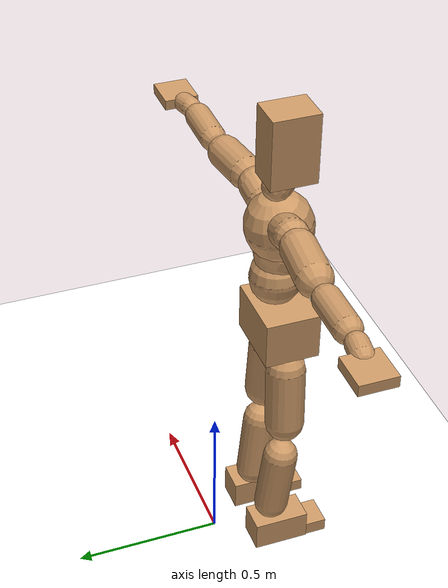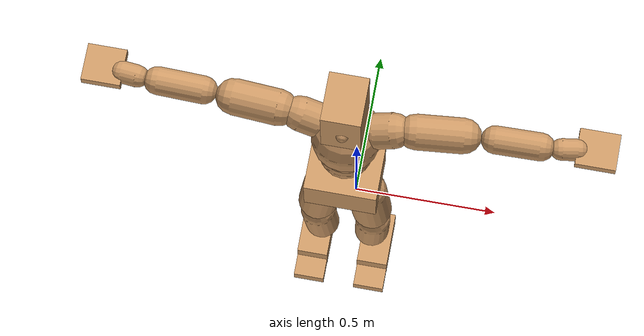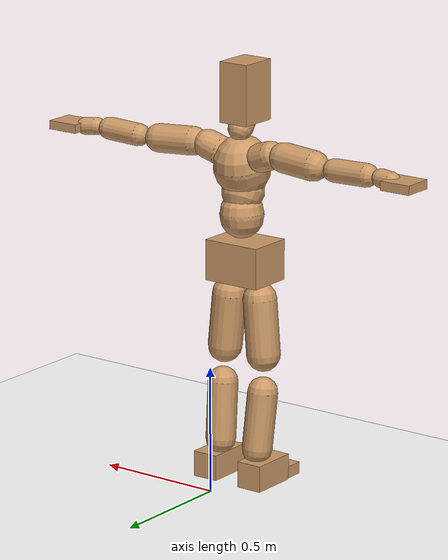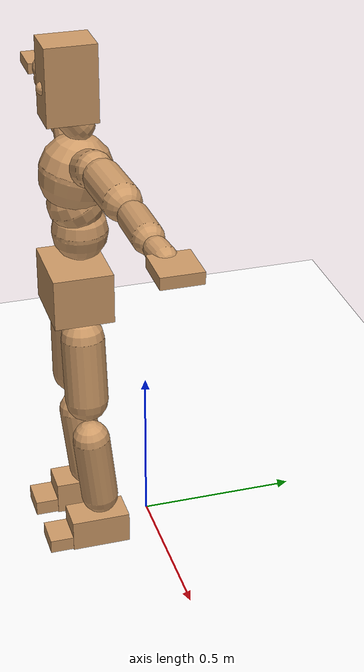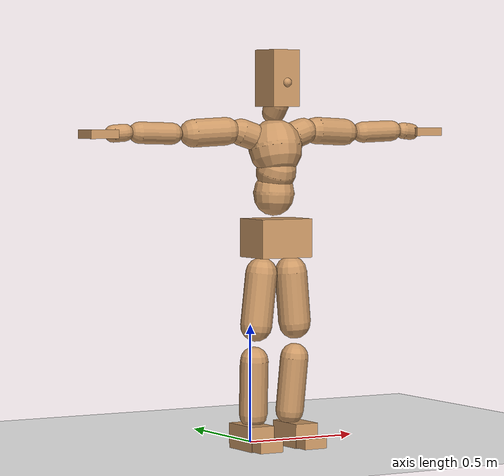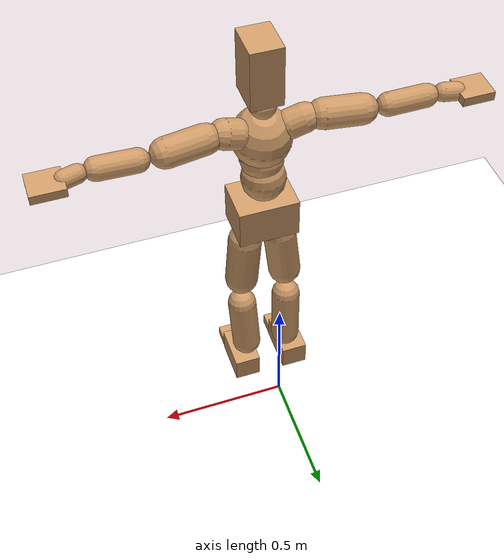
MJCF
<mujoco model="humanoid">
  <option integrator="implicitfast" />

  <visual>
    <global offwidth="1280" offheight="960" />
    <headlight active="1" ambient="0.34 0.34 0.34" diffuse="0.5 0.5 0.5" />
  </visual>

  <default>
    <joint damping="2" stiffness="2" armature="0.01" limited="true" solimplimit="0 .99 .01" />
    <geom condim="1" friction="0.7 0.005 0.0001" solimp=".99 .99 .003" solref="0.015 1" margin="0.001" rgba="0.8 0.6 .4 1" />
    <default class="smplcontact">
      <geom condim="3" friction="1. 0.005 0.0001" solref="0.015 1" solimp="0.98 0.98 0.001" priority="1" />
    </default>
    <default class="stiff_medium">
      <joint stiffness="10" />
    </default>
    <default class="stiff_medium_higher">
      <joint stiffness="50" />
    </default>
    <default class="stiff_high">
      <joint stiffness="100" />
    </default>
  </default>

  <asset>
    <texture type="skybox" builtin="gradient" rgb1="0.99 0.99 0.99" rgb2="0.608 0.828 0.892" width="100" />
    <texture builtin="flat" height="1278" mark="cross" markrgb="1 1 1" name="texgeom" random="0.01" rgb1="0.8 0.6 0.4" rgb2="0.8 0.6 0.4" type="cube" width="127" />
    <texture name="texplane" type="2d" builtin="checker" markrgb="1 1 1" rgb1="0.756 0.772 0.76" rgb2="0.6 0.6 0.6" width="100" height="100" />
    <material name="MatPlane" reflectance="0.5" texture="texplane" texrepeat="1 1" texuniform="true" />
    <material name="geom" texture="texgeom" texuniform="true" />
  </asset>

  <worldbody>
    <light name="tracking_light" pos="0 0 7" dir="0 0 -1" directional="true" cutoff="100" exponent="1" diffuse="1 1 1" specular="0.1 0.1 0.1" mode="trackcom" />
    <camera name="back" pos="0 3 2.4" xyaxes="-1 0 0 0 -1 2" mode="trackcom" />
    <camera name="side" pos="-3 0 2.4" xyaxes="0 -1 0 1 0 2" mode="trackcom" />
    <camera name="front_side" pos="-2.8 -2.8 0.8" xyaxes="0.5 -0.5 0 0.1 0.1 1" mode="trackcom" />
    <geom condim="3" name="floor" pos="0 0 0" rgba="1 1 1 1" size="100 100 .2" type="plane" material="MatPlane" />
    <body name="Pelvis" pos="-0.0018 -0.2233 0.891139" euler="90 0 0">
      <site name="Pelvis" size="0.01" />
      <freejoint name="Pelvis" />
      <geom type="box" pos="-0.0000 -0.0121 -0.0055" size="0.118926 0.0803225 0.0923375" quat="1.0000 0.0000 0.0000 0.0000" density="3165.830099" name="Pelvis" />
      <body name="L_Hip" pos="0.0655872 -0.0862542 -0.00641716">
        <joint name="L_Hip_x" type="hinge" pos="0 0 0" axis="1 0 0" stiffness="11.224100113636364" range="-160.0 22.92" class="stiff_medium" damping="16.52584637132894" armature="0.010814174480657322"/>
        <joint name="L_Hip_y" type="hinge" pos="0 0 0" axis="0 1 0" stiffness="11.25454909090909" range="-70.0 70.0" class="stiff_medium" damping="12.044141602982009" armature="0.012889130055850564"/>
        <joint name="L_Hip_z" type="hinge" pos="0 0 0" axis="0 0 1" stiffness="11.248242159090909" range="-28.65 90.0" class="stiff_medium" damping="11.027472553614855" armature="0.010811036000184862"/>
        <geom type="capsule" density="2040.816327" fromto="0.00651153 -0.0707775 -0.00084933 0.0258574 -0.283299 -0.00339732" size="0.0672687" name="L_Hip" />
        <body name="L_Knee" pos="0.0323689 -0.354076 -0.00424665">
          <joint name="L_Knee_x" type="hinge" pos="0 0 0" axis="1 0 0" range="-5.16 171.89" damping="9.027042336068336" armature="0.011136714867813416" stiffness="2.2865667272727275"/>
          <joint name="L_Knee_y" type="hinge" pos="0 0 0" axis="0 1 0" range="-4.58 6.88" damping="9.79659838648217" armature="0.01326654557773221" stiffness="2.260699181818182"/>
          <joint name="L_Knee_z" type="hinge" pos="0 0 0" axis="0 0 1" range="-6.88 4.58" damping="9.034437361930168" armature="0.011120937888179108" stiffness="2.293563818181818"/>
          <geom type="capsule" density="1234.567901" fromto="-0.00254799 -0.0751185 -0.00821019 -0.0102863 -0.300474 -0.0330295" size="0.0591746" name="L_Knee" />
          <body name="L_Ankle" pos="-0.0128343 -0.375593 -0.0412397">
            <joint name="L_Ankle_x" type="hinge" pos="0 0 0" axis="1 0 0" range="-45.84 45.84" class="stiff_medium" damping="7.609324313239408" armature="0.013023957638343932" stiffness="12.349424318181818"/>
            <joint name="L_Ankle_y" type="hinge" pos="0 0 0" axis="0 1 0" range="-74.48 22.92" class="stiff_medium" damping="3.8189387550023723" armature="0.013121882506594565" stiffness="12.349424886363636"/>
            <joint name="L_Ankle_z" type="hinge" pos="0 0 0" axis="0 0 1" range="-4.58 4.58" class="stiff_medium" damping="7.822240287837741" armature="0.013762991825523981" stiffness="12.349431136363638"/>
            <geom type="box" pos="0.0219882 -0.0225544 0.0228375" size="0.0528305 0.0507523 0.092973" quat="1.0000 0.0000 0.0000 0.0000" density="449.071558" name="L_Ankle" class="smplcontact" />
            <body name="L_Toe" pos="0.0249137 -0.0526585 0.112583">
              <joint name="L_Toe_x" type="hinge" pos="0 0 0" axis="1 0 0" range="-91.67 22.92" armature="0.014134754938238415" damping="2.6423975448942314" stiffness="2.4698924090909093"/>
              <joint name="L_Toe_y" type="hinge" pos="0 0 0" axis="0 1 0" range="-4.58 4.58" armature="0.014584244926808836" damping="2.6840832270362656" stiffness="2.4698922727272725"/>
              <joint name="L_Toe_z" type="hinge" pos="0 0 0" axis="0 0 1" range="-4.58 4.58" armature="0.015493097718803136" damping="2.7664506908562343" stiffness="2.4698900000000004"/>
              <geom type="box" pos="-0.0028311 0.00519035 0.0234038" size="0.0522836 0.021876 0.0542525" quat="1.0000 0.0000 0.0000 0.0000" density="423.206892" name="L_Toe" class="smplcontact" />
            </body>
          </body>
        </body>
      </body>
      <body name="R_Hip" pos="-0.0638885 -0.0854048 -0.00405791">
        <joint name="R_Hip_x" type="hinge" pos="0 0 0" axis="1 0 0" stiffness="11.224100113636364" range="-160.0 22.92" class="stiff_medium" damping="16.52584637132894" armature="0.010814174480657322"/>
        <joint name="R_Hip_y" type="hinge" pos="0 0 0" axis="0 1 0" stiffness="11.25454909090909" range="-70.0 70.0" class="stiff_medium" damping="12.044141602982009" armature="0.012889130055850564"/>
        <joint name="R_Hip_z" type="hinge" pos="0 0 0" axis="0 0 1" stiffness="11.248242159090909" range="-90.0 28.65" class="stiff_medium" damping="11.027472553614855" armature="0.010811036000184862"/>
        <geom type="capsule" density="2040.816327" fromto="-0.00726649 -0.072193 -0.00169866 -0.0288772 -0.288867 -0.00670027" size="0.0662843" name="R_Hip" />
        <body name="R_Knee" pos="-0.0361437 -0.36106 -0.00839893">
          <joint name="R_Knee_x" type="hinge" pos="0 0 0" axis="1 0 0" range="-5.16 171.89" damping="9.027042336068336" armature="0.011136714867813416" stiffness="2.2865667272727275"/>
          <joint name="R_Knee_y" type="hinge" pos="0 0 0" axis="0 1 0" range="-6.88 4.58" damping="9.79659838648217" armature="0.01326654557773221" stiffness="2.260699181818182"/>
          <joint name="R_Knee_z" type="hinge" pos="0 0 0" axis="0 0 1" range="-4.58 6.88" damping="9.034437361930168" armature="0.011120937888179108" stiffness="2.293563818181818"/>
          <geom type="capsule" density="1234.567901" fromto="0.00301984 -0.0752129 -0.00802145 0.0118906 -0.300757 -0.0318971" size="0.0591746" name="R_Knee" />
          <body name="R_Ankle" pos="0.0149105 -0.37597 -0.0399185">
            <joint name="R_Ankle_x" type="hinge" pos="0 0 0" axis="1 0 0" range="-45.84 45.84" class="stiff_medium" damping="7.609324313239408" armature="0.013023957638343932" stiffness="12.349424318181818"/>
            <joint name="R_Ankle_y" type="hinge" pos="0 0 0" axis="0 1 0" range="-22.92 74.48" class="stiff_medium" damping="3.8189387550023723" armature="0.013121882506594565" stiffness="12.349424886363636"/>
            <joint name="R_Ankle_z" type="hinge" pos="0 0 0" axis="0 0 1" range="-4.58 4.58" class="stiff_medium" damping="7.822240287837741" armature="0.013762991825523981" stiffness="12.349431136363638"/>
            <geom type="box" pos="-0.0200064 -0.0164204 0.0241587" size="0.0528305 0.0522836 0.0946137" quat="1.0000 0.0000 0.0000 0.0000" density="434.700981" name="R_Ankle" class="smplcontact" />
            <body name="R_Toe" pos="-0.02397 -0.045392 0.116358">
              <joint name="R_Toe_x" type="hinge" pos="0 0 0" axis="1 0 0" range="-91.67 22.92" armature="0.014134754938238415" damping="2.6423975448942314" stiffness="2.4698924090909093"/>
              <joint name="R_Toe_y" type="hinge" pos="0 0 0" axis="0 1 0" range="-4.58 4.58" armature="0.014584244926808836" damping="2.6840832270362656" stiffness="2.4698922727272725"/>
              <joint name="R_Toe_z" type="hinge" pos="0 0 0" axis="0 0 1" range="-4.58 4.58" armature="0.015493097718803136" damping="2.7664506908562343" stiffness="2.4698900000000004"/>
              <geom type="box" pos="0.00396354 0.00424665 0.021422" size="0.052393 0.0236261 0.0539243" quat="1.0000 0.0000 0.0000 0.0000" density="407.384095" name="R_Toe" class="smplcontact" />
            </body>
          </body>
        </body>
      </body>
      <body name="Torso" pos="-0.002425 0.10573 -0.025899">
        <joint name="Torso_x" type="hinge" pos="0 0 0" axis="1 0 0" range="-25.78 57.3" class="stiff_medium" damping="17.36135835814969" armature="0.01129319075592856" stiffness="11.862281363636365"/>
        <joint name="Torso_y" type="hinge" pos="0 0 0" axis="0 1 0" range="-57.3 57.3" class="stiff_high" damping="23.121776132628803" armature="0.011282081978754964" stiffness="118.46584090909091"/>
        <joint name="Torso_z" type="hinge" pos="0 0 0" axis="0 0 1" range="-34.38 34.38" class="stiff_high" damping="23.23651041986613" armature="0.011219101738913795" stiffness="120.31609772727275"/>
        <geom type="capsule" density="2040.816327" fromto="0.002425 0.058976 0.000485 0.00291 0.072071 0.000582" size="0.0855512" name="Torso" />
        <body name="Spine" pos="0.005335 0.131144 0.001067">
          <joint name="Spine_x" type="hinge" pos="0 0 0" axis="1 0 0" stiffness="11.67780818181818" range="-25.78 57.3" class="stiff_medium" damping="17.04978412185664" armature="0.01106353498593888"/>
          <joint name="Spine_y" type="hinge" pos="0 0 0" axis="0 1 0" stiffness="11.72129659090909" range="-57.3 57.3" class="stiff_high" damping="9.185383351301875" armature="0.011247058220052621"/>
          <joint name="Spine_z" type="hinge" pos="0 0 0" axis="0 0 1" stiffness="23.26254590909091" range="-34.38 34.38" class="stiff_high" damping="13.612380937703144" armature="0.011063141029676149"/>
          <geom type="capsule" density="2040.816327" fromto="0.000679 0.023086 0.011058 0.000776 0.028227 0.01358" size="0.0839938" name="Spine" />
          <body name="Chest" pos="0.001455 0.051313 0.024638">
            <joint name="Chest_x" type="hinge" pos="0 0 0" axis="1 0 0" stiffness="11.399683863636362" range="-25.78 57.3" class="stiff_medium" damping="16.77047591891428" armature="0.010965172013586726"/>
            <joint name="Chest_y" type="hinge" pos="0 0 0" axis="0 1 0" stiffness="11.471189090909089" range="-57.3 57.3" class="stiff_high" damping="9.075157601889128" armature="0.011218116323648376"/>
            <joint name="Chest_z" type="hinge" pos="0 0 0" axis="0 0 1" stiffness="22.890016818181817" range="-34.38 34.38" class="stiff_high" damping="13.47855565590168" armature="0.011023210589788118"/>
            <geom type="capsule" density="2040.816327" fromto="-0.000873 0.066154 -0.016781 -0.00097 0.080801 -0.020564" size="0.111473" name="Chest" />
            <body name="Neck" pos="-0.002716 0.207483 -0.041613">
              <joint name="Neck_x" type="hinge" pos="0 0 0" axis="1 0 0" range="-28.65 57.3" class="stiff_medium_higher" damping="10.709276524906514" armature="0.010698006059733709" stiffness="53.60279431818182"/>
              <joint name="Neck_y" type="hinge" pos="0 0 0" axis="0 1 0" range="-40.11 40.11" class="stiff_medium_higher" damping="10.854621079338676" armature="0.011016088630788125" stiffness="53.47760113636364"/>
              <joint name="Neck_z" type="hinge" pos="0 0 0" axis="0 0 1" range="-40.11 40.11" class="stiff_medium_higher" damping="10.665428841173625" armature="0.010689705086256402" stiffness="53.20603863636363"/>
              <geom type="capsule" density="1000" fromto="0.00097 0.01261 0.009991 0.003977 0.05044 0.039867" size="0.048505" name="Neck" />
              <body name="Head" pos="0.0052 0.065 0.0513">
                <joint name="Head_x" type="hinge" pos="0 0 0" axis="1 0 0" range="-28.65 57.3" class="stiff_medium_higher" damping="2.132893122864166" armature="0.010754972882405529" stiffness="52.87359999999999"/>
                <joint name="Head_y" type="hinge" pos="0 0 0" axis="0 1 0" range="-40.11 40.11" class="stiff_medium_higher" damping="2.152888064702284" armature="0.010957564406285807" stiffness="52.87359999999999"/>
                <joint name="Head_z" type="hinge" pos="0 0 0" axis="0 0 1" range="-40.11 40.11" class="stiff_medium_higher" damping="2.1318983260899476" armature="0.010744942827765464" stiffness="52.87359999999999"/>
                <geom type="box" pos="-0.0042 0.0876 -0.0116" size="0.0617393 0.11757 0.0774288" quat="1.0000 0.0000 0.0000 0.0000" density="1018.069894" name="Head" />
                <geom type="capsule" name="nose" size="0.020376 0.010188" pos="0 0.07 0.05" quat="1 0 0 0" mass="0" contype="0" conaffinity="0" />
              </body>
            </body>
            <body name="L_Thorax" pos="0.075254 0.116223 -0.0325655">
              <joint name="L_Thorax_x" type="hinge" pos="0 0 0" axis="1 0 0" range="-10.89 4.58" class="stiff_medium_higher" damping="24.082823394152687" armature="0.012574711347353103" stiffness="57.65364772727273"/>
              <joint name="L_Thorax_y" type="hinge" pos="0 0 0" axis="0 1 0" range="-28.65 17.19" class="stiff_medium_higher" damping="22.60318805440775" armature="0.011116129442402459" stiffness="57.45076477272726"/>
              <joint name="L_Thorax_z" type="hinge" pos="0 0 0" axis="0 0 1" range="-31.51 40.11" class="stiff_medium_higher" damping="22.602580001568167" armature="0.011114810932368765" stiffness="57.45448863636364"/>
              <geom type="capsule" density="1000" fromto="0.017381 0.0058255 -0.001719 0.069524 0.023302 -0.0067805" size="0.056987" name="L_Thorax" />
              <body name="L_Shoulder" pos="0.086905 0.0291275 -0.0084995">
                <joint name="L_Shoulder_x" type="hinge" pos="0 0 0" axis="1 0 0" range="-97.4 97.4" class="stiff_medium" damping="7.38946668886333" armature="0.013135354857305041" stiffness="11.54733806818182"/>
                <joint name="L_Shoulder_y" type="hinge" pos="0 0 0" axis="0 1 0" range="-108.86 80.21" class="stiff_medium" damping="6.804120473661761" armature="0.011163459320299874" stiffness="11.519740454545456"/>
                <joint name="L_Shoulder_z" type="hinge" pos="0 0 0" axis="0 0 1" range="-97.4 85.94" class="stiff_medium" damping="6.799906646830323" armature="0.011161706416325771" stiffness="11.507283295454545"/>
                <geom type="capsule" density="1000" fromto="0.0495645 -0.002483 -0.0052525 0.198353 -0.009741 -0.02101" size="0.0565495" name="L_Shoulder" />
                <body name="L_Elbow" pos="0.247918 -0.012224 -0.0262625">
                  <joint name="L_Elbow_x" type="hinge" pos="0 0 0" axis="1 0 0" range="-17.19 4.58" damping="6.404477088283206" armature="0.0140534415726132" stiffness="2.334934204545455"/>
                  <joint name="L_Elbow_y" type="hinge" pos="0 0 0" axis="0 1 0" range="-180.0 17.19" damping="5.766901250709793" armature="0.011395074831630004" stiffness="2.3348438181818185"/>
                  <joint name="L_Elbow_z" type="hinge" pos="0 0 0" axis="0 0 1" range="-100.84 4.58" damping="5.765174249622643" armature="0.011385874196797277" stiffness="2.3353312045454544"/>
                  <geom type="capsule" density="1000" fromto="0.047559 0.001719 -0.000191 0.190427 0.006876 -0.0008595" size="0.0442989" name="L_Elbow" />
                  <body name="L_Wrist" pos="0.237986 0.008595 -0.001146">
                    <joint name="L_Wrist_x" type="hinge" pos="0 0 0" axis="1 0 0" range="-180.0 22.92" armature="0.014371817637024883" damping="2.6500410464434143" stiffness="2.4432252500000002"/>
                    <joint name="L_Wrist_y" type="hinge" pos="0 0 0" axis="0 1 0" range="-17.19 17.19" armature="0.01222391225419744" damping="2.4389774813946965" stiffness="2.4331862954545453"/>
                    <joint name="L_Wrist_z" type="hinge" pos="0 0 0" axis="0 0 1" range="-22.92 22.92" armature="0.012102866607507128" damping="2.4286849442550307" stiffness="2.4368237500000003"/>
                    <geom type="capsule" density="1000" fromto="0.016044 -0.001528 -0.002865 0.064176 -0.0062075 -0.01146" size="0.0347828" name="L_Wrist" class="smplcontact" />
                    <body name="L_Hand" pos="0.08022 -0.007831 -0.0142295">
                      <joint name="L_Hand_x" type="hinge" pos="0 0 0" axis="1 0 0" range="-17.19 17.19" armature="0.015494149968463367" damping="2.78305616472882" stiffness="2.49946"/>
                      <joint name="L_Hand_y" type="hinge" pos="0 0 0" axis="0 1 0" range="-51.57 51.57" armature="0.013695598685129706" damping="2.6165473849916916" stiffness="2.49946"/>
                      <joint name="L_Hand_z" type="hinge" pos="0 0 0" axis="0 0 1" range="-91.67 91.67" armature="0.013216167780255042" damping="2.5703417173611864" stiffness="2.49946"/>
                      <geom type="box" pos="0.0470815 0.000955 -0.005539" size="0.0639873 0.017282 0.0588464" quat="1.0000 0.0000 0.0000 0.0000" density="400.552564" name="L_Hand" class="smplcontact" />
                    </body>
                  </body>
                </body>
              </body>
            </body>
            <body name="R_Thorax" pos="-0.078119 0.113454 -0.036863">
              <joint name="R_Thorax_x" type="hinge" pos="0 0 0" axis="1 0 0" range="-10.89 4.58" class="stiff_medium_higher" damping="24.082823394152687" armature="0.012574711347353103" stiffness="57.65364772727273"/>
              <joint name="R_Thorax_y" type="hinge" pos="0 0 0" axis="0 1 0" range="-17.19 28.65" class="stiff_medium_higher" damping="22.60318805440775" armature="0.011116129442402459" stiffness="57.45076477272726"/>
              <joint name="R_Thorax_z" type="hinge" pos="0 0 0" axis="0 0 1" range="-40.11 31.51" class="stiff_medium_higher" damping="22.602580001568167" armature="0.011114810932368765" stiffness="57.45448863636364"/>
              <geom type="capsule" density="1000" fromto="-0.018336 0.0062075 -0.001719 -0.073344 0.02483 -0.0069715" size="0.0558932" name="R_Thorax" />
              <body name="R_Shoulder" pos="-0.09168 0.031133 -0.0086905">
                <joint name="R_Shoulder_x" type="hinge" pos="0 0 0" axis="1 0 0" range="-97.4 97.4" class="stiff_medium" damping="7.38946668886333" armature="0.013135354857305041" stiffness="11.54733806818182"/>
                <joint name="R_Shoulder_y" type="hinge" pos="0 0 0" axis="0 1 0" range="-80.21 108.86" class="stiff_medium" damping="6.804120473661761" armature="0.011163459320299874" stiffness="11.519740454545456"/>
                <joint name="R_Shoulder_z" type="hinge" pos="0 0 0" axis="0 0 1" range="-85.94 97.4" class="stiff_medium" damping="6.799906646830323" armature="0.011161706416325771" stiffness="11.507283295454545"/>
                <geom type="capsule" density="1000" fromto="-0.0484185 -0.0025785 -0.0041065 -0.193865 -0.0102185 -0.0163305" size="0.0580808" name="R_Shoulder" />
                <body name="R_Elbow" pos="-0.242283 -0.0127015 -0.020437">
                  <joint name="R_Elbow_x" type="hinge" pos="0 0 0" axis="1 0 0" range="-17.19 4.58" damping="6.404477088283206" armature="0.0140534415726132" stiffness="2.334934204545455"/>
                  <joint name="R_Elbow_y" type="hinge" pos="0 0 0" axis="0 1 0" range="-17.19 180.0" damping="5.766901250709793" armature="0.011395074831630004" stiffness="2.3348438181818185"/>
                  <joint name="R_Elbow_z" type="hinge" pos="0 0 0" axis="0 0 1" range="-4.58 100.84" damping="5.765174249622643" armature="0.011385874196797277" stiffness="2.3353312045454544"/>
                  <geom type="capsule" density="1000" fromto="-0.0488005 0.001528 -0.0010505 -0.195011 0.005921 -0.004202" size="0.044627" name="R_Elbow" />
                  <body name="R_Wrist" pos="-0.243812 0.007449 -0.005348">
                    <joint name="R_Wrist_x" type="hinge" pos="0 0 0" axis="1 0 0" range="-180.0 22.92" armature="0.014371817637024883" damping="2.6500410464434143" stiffness="2.4432252500000002"/>
                    <joint name="R_Wrist_y" type="hinge" pos="0 0 0" axis="0 1 0" range="-17.19 17.19" armature="0.01222391225419744" damping="2.4389774813946965" stiffness="2.4331862954545453"/>
                    <joint name="R_Wrist_z" type="hinge" pos="0 0 0" axis="0 0 1" range="-22.92 22.92" armature="0.012102866607507128" damping="2.4286849442550307" stiffness="2.4368237500000003"/>
                    <geom type="capsule" density="1000" fromto="-0.0161395 -0.001146 -0.0020055 -0.0646535 -0.0046795 -0.0079265" size="0.0356579" name="R_Wrist" class="smplcontact" />
                    <body name="R_Hand" pos="-0.080793 -0.0058255 -0.0098365">
                      <joint name="R_Hand_x" type="hinge" pos="0 0 0" axis="1 0 0" range="-17.19 17.19" armature="0.015494149968463367" damping="2.78305616472882" stiffness="2.49946"/>
                      <joint name="R_Hand_y" type="hinge" pos="0 0 0" axis="0 1 0" range="-51.57 51.57" armature="0.013695598685129706" damping="2.6165473849916916" stiffness="2.49946"/>
                      <joint name="R_Hand_z" type="hinge" pos="0 0 0" axis="0 0 1" range="-91.67 91.67" armature="0.013216167780255042" damping="2.5703417173611864" stiffness="2.49946"/>
                      <geom type="box" pos="-0.044121 -0.0008595 -0.0075445" size="0.0622372 0.0179383 0.0597215" quat="1.0000 0.0000 0.0000 0.0000" density="403.679611" name="R_Hand" class="smplcontact" />
                    </body>
                  </body>
                </body>
              </body>
            </body>
          </body>
        </body>
      </body>
    </body>
  </worldbody>
  <actuator>
    <general name="L_Hip_x" joint="L_Hip_x" biastype="affine" gainprm="322.50214050859006" biasprm="-241.68266685391168 -202.03380204545454 -2.2034461828438587" ctrllimited="true" ctrlrange="-1 1" forcerange="-404.0676040909091 404.0676040909091" />
    <general name="L_Hip_y" joint="L_Hip_y" biastype="affine" gainprm="247.5004612042598" biasprm="0.0 -202.58188363636364 -2.4088283205964016" ctrllimited="true" ctrlrange="-1 1" forcerange="-405.1637672727273 405.1637672727273" />
    <general name="L_Hip_z" joint="L_Hip_z" biastype="affine" gainprm="209.63909543883003" biasprm="108.39745895636091 -202.46835886363635 -2.205494510722971" ctrllimited="true" ctrlrange="-1 1" forcerange="-404.9367177272727 404.9367177272727" />
    <general name="L_Knee_x" joint="L_Knee_x" biastype="affine" gainprm="317.95795279657574" biasprm="299.42462281713114 -205.79100545454548 -2.256760584017084" ctrllimited="true" ctrlrange="-1 1" forcerange="-411.58201090909097 411.58201090909097" />
    <general name="L_Knee_y" joint="L_Knee_y" biastype="affine" gainprm="20.34779137261655" biasprm="4.083762666406463 -203.4629263636364 -2.4491495966205425" ctrllimited="true" ctrlrange="-1 1" forcerange="-406.9258527272728 406.9258527272728" />
    <general name="L_Knee_z" joint="L_Knee_z" biastype="affine" gainprm="20.643594887583255" biasprm="-4.143129864000129 -206.42074363636362 -2.258609340482542" ctrllimited="true" ctrlrange="-1 1" forcerange="-412.84148727272725 412.84148727272725" />
    <general name="L_Ankle_x" joint="L_Ankle_x" biastype="affine" gainprm="88.92240475663273" biasprm="0.0 -111.14481886363637 -2.5364414377464692" ctrllimited="true" ctrlrange="-1 1" forcerange="-222.28963772727275 222.28963772727275" />
    <general name="L_Ankle_y" joint="L_Ankle_y" biastype="affine" gainprm="94.47036018520859" biasprm="-50.00915576128701 -111.14482397727272 -2.5459591700015816" ctrllimited="true" ctrlrange="-1 1" forcerange="-222.28964795454544 222.28964795454544" />
    <general name="L_Ankle_z" joint="L_Ankle_z" biastype="affine" gainprm="8.884486008688988" biasprm="0.0 -111.14488022727274 -2.607413429279247" ctrllimited="true" ctrlrange="-1 1" forcerange="-222.28976045454547 222.28976045454547" />
    <general name="L_Toe_x" joint="L_Toe_x" biastype="affine" gainprm="88.9149170171579" biasprm="-53.34584645195572 -88.91612672727274 -1.0569590179576926" ctrllimited="true" ctrlrange="-1 1" forcerange="-177.83225345454548 177.83225345454548" />
    <general name="L_Toe_y" joint="L_Toe_y" biastype="affine" gainprm="7.107606203948908" biasprm="0.0 -88.91612181818181 -1.0736332908145063" ctrllimited="true" ctrlrange="-1 1" forcerange="-177.83224363636361 177.83224363636361" />
    <general name="L_Toe_z" joint="L_Toe_z" biastype="affine" gainprm="7.107599663724204" biasprm="0.0 -88.91604000000001 -1.1065802763424937" ctrllimited="true" ctrlrange="-1 1" forcerange="-177.83208000000002 177.83208000000002" />
    <general name="R_Hip_x" joint="R_Hip_x" biastype="affine" gainprm="322.50214050859006" biasprm="-241.68266685391168 -202.03380204545454 -2.2034461828438587" ctrllimited="true" ctrlrange="-1 1" forcerange="-404.0676040909091 404.0676040909091" />
    <general name="R_Hip_y" joint="R_Hip_y" biastype="affine" gainprm="247.5004612042598" biasprm="0.0 -202.58188363636364 -2.4088283205964016" ctrllimited="true" ctrlrange="-1 1" forcerange="-405.1637672727273 405.1637672727273" />
    <general name="R_Hip_z" joint="R_Hip_z" biastype="affine" gainprm="209.63909543883003" biasprm="-108.39745895636091 -202.46835886363635 -2.205494510722971" ctrllimited="true" ctrlrange="-1 1" forcerange="-404.9367177272727 404.9367177272727" />
    <general name="R_Knee_x" joint="R_Knee_x" biastype="affine" gainprm="317.95795279657574" biasprm="299.42462281713114 -205.79100545454548 -2.256760584017084" ctrllimited="true" ctrlrange="-1 1" forcerange="-411.58201090909097 411.58201090909097" />
    <general name="R_Knee_y" joint="R_Knee_y" biastype="affine" gainprm="20.34779137261655" biasprm="-4.083762666406463 -203.4629263636364 -2.4491495966205425" ctrllimited="true" ctrlrange="-1 1" forcerange="-406.9258527272728 406.9258527272728" />
    <general name="R_Knee_z" joint="R_Knee_z" biastype="affine" gainprm="20.643594887583255" biasprm="4.143129864000129 -206.42074363636362 -2.258609340482542" ctrllimited="true" ctrlrange="-1 1" forcerange="-412.84148727272725 412.84148727272725" />
    <general name="R_Ankle_x" joint="R_Ankle_x" biastype="affine" gainprm="88.92240475663273" biasprm="0.0 -111.14481886363637 -2.5364414377464692" ctrllimited="true" ctrlrange="-1 1" forcerange="-222.28963772727275 222.28963772727275" />
    <general name="R_Ankle_y" joint="R_Ankle_y" biastype="affine" gainprm="94.47036018520859" biasprm="50.00915576128701 -111.14482397727272 -2.5459591700015816" ctrllimited="true" ctrlrange="-1 1" forcerange="-222.28964795454544 222.28964795454544" />
    <general name="R_Ankle_z" joint="R_Ankle_z" biastype="affine" gainprm="8.884486008688988" biasprm="0.0 -111.14488022727274 -2.607413429279247" ctrllimited="true" ctrlrange="-1 1" forcerange="-222.28976045454547 222.28976045454547" />
    <general name="R_Toe_x" joint="R_Toe_x" biastype="affine" gainprm="88.9149170171579" biasprm="-53.34584645195572 -88.91612672727274 -1.0569590179576926" ctrllimited="true" ctrlrange="-1 1" forcerange="-177.83225345454548 177.83225345454548" />
    <general name="R_Toe_y" joint="R_Toe_y" biastype="affine" gainprm="7.107606203948908" biasprm="0.0 -88.91612181818181 -1.0736332908145063" ctrllimited="true" ctrlrange="-1 1" forcerange="-177.83224363636361 177.83224363636361" />
    <general name="R_Toe_z" joint="R_Toe_z" biastype="affine" gainprm="7.107599663724204" biasprm="0.0 -88.91604000000001 -1.1065802763424937" ctrllimited="true" ctrlrange="-1 1" forcerange="-177.83208000000002 177.83208000000002" />
    <general name="Torso_x" joint="Torso_x" biastype="affine" gainprm="206.40647755897334" biasprm="78.30924618029415 -284.69475272727277 -4.629695562173251" ctrllimited="true" ctrlrange="-1 1" forcerange="-427.0421290909091 427.0421290909091" />
    <general name="Torso_y" joint="Torso_y" biastype="affine" gainprm="284.3389614430216" biasprm="0.0 -284.3180181818182 -4.62435522652576" ctrllimited="true" ctrlrange="-1 1" forcerange="-426.4770272727273 426.4770272727273" />
    <general name="Torso_z" joint="Torso_z" biastype="affine" gainprm="173.26794294518643" biasprm="0.0 -288.7586345454546 -4.6473020839732255" ctrllimited="true" ctrlrange="-1 1" forcerange="-433.1379518181819 433.1379518181819" />
    <general name="Spine_x" joint="Spine_x" biastype="affine" gainprm="203.19660093440513" biasprm="77.09144031598998 -280.26739636363635 -4.5466090991617705" ctrllimited="true" ctrlrange="-1 1" forcerange="-420.4010945454545 420.4010945454545" />
    <general name="Spine_y" joint="Spine_y" biastype="affine" gainprm="281.3318399505797" biasprm="0.0 -281.31111818181813 -4.592691675650937" ctrllimited="true" ctrlrange="-1 1" forcerange="-421.9666772727272 421.9666772727272" />
    <general name="Spine_z" joint="Spine_z" biastype="affine" gainprm="167.50266811647487" biasprm="0.0 -279.15055090909095 -4.537460312567714" ctrllimited="true" ctrlrange="-1 1" forcerange="-418.7258263636364 418.7258263636364" />
    <general name="Chest_x" joint="Chest_x" biastype="affine" gainprm="198.35717257491777" biasprm="75.25539335052247 -273.5924127272727 -4.4721269117104745" ctrllimited="true" ctrlrange="-1 1" forcerange="-410.38861909090906 410.38861909090906" />
    <general name="Chest_y" joint="Chest_y" biastype="affine" gainprm="275.3288177921768" biasprm="0.0 -275.3085381818181 -4.537578800944564" ctrllimited="true" ctrlrange="-1 1" forcerange="-412.96280727272716 412.96280727272716" />
    <general name="Chest_z" joint="Chest_z" biastype="affine" gainprm="164.8202610866453" biasprm="0.0 -274.6802018181818 -4.49285188530056" ctrllimited="true" ctrlrange="-1 1" forcerange="-412.02030272727274 412.02030272727274" />
    <general name="Neck_x" joint="Neck_x" biastype="affine" gainprm="28.947641098319984" biasprm="9.649213699439994 -38.59401190909091 -0.8567421219925212" ctrllimited="true" ctrlrange="-1 1" forcerange="-77.18802381818182 77.18802381818182" />
    <general name="Neck_y" joint="Neck_y" biastype="affine" gainprm="26.954696346955934" biasprm="0.0 -38.50387281818182 -0.8683696863470941" ctrllimited="true" ctrlrange="-1 1" forcerange="-77.00774563636364 77.00774563636364" />
    <general name="Neck_z" joint="Neck_z" biastype="affine" gainprm="26.817818765105258" biasprm="0.0 -38.308347818181815 -0.85323430729389" ctrllimited="true" ctrlrange="-1 1" forcerange="-76.61669563636363 76.61669563636363" />
    <general name="Head_x" joint="Head_x" biastype="affine" gainprm="19.035898107485664" biasprm="6.345299369161888 -25.379327999999994 -0.8531572491456665" ctrllimited="true" ctrlrange="-1 1" forcerange="-50.75865599999999 50.75865599999999" />
    <general name="Head_y" joint="Head_y" biastype="affine" gainprm="17.76683823365329" biasprm="0.0 -25.379327999999994 -0.8611552258809136" ctrllimited="true" ctrlrange="-1 1" forcerange="-50.75865599999999 50.75865599999999" />
    <general name="Head_z" joint="Head_z" biastype="affine" gainprm="17.76683823365329" biasprm="0.0 -25.379327999999994 -0.8527593304359791" ctrllimited="true" ctrlrange="-1 1" forcerange="-50.75865599999999 50.75865599999999" />
    <general name="L_Thorax_x" joint="L_Thorax_x" biastype="affine" gainprm="18.67995034721037" biasprm="-7.619294550154975 -138.36875454545455 -1.9266258715322149" ctrllimited="true" ctrlrange="-1 1" forcerange="-276.7375090909091 276.7375090909091" />
    <general name="L_Thorax_y" joint="L_Thorax_y" biastype="affine" gainprm="55.156796809032016" biasprm="-13.789199202258004 -137.8818354545454 -1.80825504435262" ctrllimited="true" ctrlrange="-1 1" forcerange="-275.7636709090908 275.7636709090908" />
    <general name="L_Thorax_z" joint="L_Thorax_z" biastype="affine" gainprm="86.18206460104405" biasprm="10.348586366503474 -137.89077272727275 -1.8082064001254534" ctrllimited="true" ctrlrange="-1 1" forcerange="-275.7815454545455 275.7815454545455" />
    <general name="L_Shoulder_x" joint="L_Shoulder_x" biastype="affine" gainprm="94.22354559996346" biasprm="0.0 -55.42722272727273 -1.9705244503635546" ctrllimited="true" ctrlrange="-1 1" forcerange="-110.85444545454546 110.85444545454546" />
    <general name="L_Shoulder_y" joint="L_Shoulder_y" biastype="affine" gainprm="91.23341424100246" biasprm="-13.824706817605758 -55.294754181818185 -1.8144321263098029" ctrllimited="true" ctrlrange="-1 1" forcerange="-110.58950836363637 110.58950836363637" />
    <general name="L_Shoulder_z" joint="L_Shoulder_z" biastype="affine" gainprm="88.37280528449055" biasprm="-5.523902850225068 -55.234959818181814 -1.8133084391547527" ctrllimited="true" ctrlrange="-1 1" forcerange="-110.46991963636363 110.46991963636363" />
    <general name="L_Elbow_x" joint="L_Elbow_x" biastype="affine" gainprm="15.969192236651006" biasprm="-9.249954713099184 -84.05763136363637 -1.024716334125313" ctrllimited="true" ctrlrange="-1 1" forcerange="-168.11526272727275 168.11526272727275" />
    <general name="L_Elbow_y" joint="L_Elbow_y" biastype="affine" gainprm="144.64139270919011" biasprm="-119.42322200407347 -84.05437745454546 -0.9227042001135669" ctrllimited="true" ctrlrange="-1 1" forcerange="-168.10875490909092 168.10875490909092" />
    <general name="L_Elbow_z" joint="L_Elbow_z" biastype="affine" gainprm="77.34306292988727" biasprm="-70.6226829598838 -84.07192336363636 -0.9224278799396228" ctrllimited="true" ctrlrange="-1 1" forcerange="-168.14384672727272 168.14384672727272" />
    <general name="L_Wrist_x" joint="L_Wrist_x" biastype="affine" gainprm="25.958941755044922" biasprm="-20.094769223745597 -14.659351500000001 -1.0600164185773657" ctrllimited="true" ctrlrange="-1 1" forcerange="-29.318703000000003 29.318703000000003" />
    <general name="L_Wrist_y" joint="L_Wrist_y" biastype="affine" gainprm="4.380057949222604" biasprm="0.0 -14.599117772727272 -0.9755909925578786" ctrllimited="true" ctrlrange="-1 1" forcerange="-29.198235545454544 29.198235545454544" />
    <general name="L_Wrist_z" joint="L_Wrist_z" biastype="affine" gainprm="5.8488077995951535" biasprm="0.0 -14.620942500000002 -0.9714739777020123" ctrllimited="true" ctrlrange="-1 1" forcerange="-29.241885000000003 29.241885000000003" />
    <general name="L_Hand_x" joint="L_Hand_x" biastype="affine" gainprm="4.499359404668506" biasprm="0.0 -14.99676 -1.1132224658915282" ctrllimited="true" ctrlrange="-1 1" forcerange="-29.99352 29.99352" />
    <general name="L_Hand_y" joint="L_Hand_y" biastype="affine" gainprm="13.498078214005515" biasprm="0.0 -14.99676 -1.0466189539966766" ctrllimited="true" ctrlrange="-1 1" forcerange="-29.99352 29.99352" />
    <general name="L_Hand_z" joint="L_Hand_z" biastype="affine" gainprm="23.993966063174046" biasprm="0.0 -14.99676 -1.0281366869444746" ctrllimited="true" ctrlrange="-1 1" forcerange="-29.99352 29.99352" />
    <general name="R_Thorax_x" joint="R_Thorax_x" biastype="affine" gainprm="18.67995034721037" biasprm="-7.619294550154975 -138.36875454545455 -1.9266258715322149" ctrllimited="true" ctrlrange="-1 1" forcerange="-276.7375090909091 276.7375090909091" />
    <general name="R_Thorax_y" joint="R_Thorax_y" biastype="affine" gainprm="55.156796809032016" biasprm="13.789199202257995 -137.8818354545454 -1.80825504435262" ctrllimited="true" ctrlrange="-1 1" forcerange="-275.7636709090908 275.7636709090908" />
    <general name="R_Thorax_z" joint="R_Thorax_z" biastype="affine" gainprm="86.18206460104405" biasprm="-10.348586366503474 -137.89077272727275 -1.8082064001254534" ctrllimited="true" ctrlrange="-1 1" forcerange="-275.7815454545455 275.7815454545455" />
    <general name="R_Shoulder_x" joint="R_Shoulder_x" biastype="affine" gainprm="94.22354559996346" biasprm="0.0 -55.42722272727273 -1.9705244503635546" ctrllimited="true" ctrlrange="-1 1" forcerange="-110.85444545454546 110.85444545454546" />
    <general name="R_Shoulder_y" joint="R_Shoulder_y" biastype="affine" gainprm="91.23341424100246" biasprm="13.824706817605758 -55.294754181818185 -1.8144321263098029" ctrllimited="true" ctrlrange="-1 1" forcerange="-110.58950836363637 110.58950836363637" />
    <general name="R_Shoulder_z" joint="R_Shoulder_z" biastype="affine" gainprm="88.37280528449055" biasprm="5.523902850225055 -55.234959818181814 -1.8133084391547527" ctrllimited="true" ctrlrange="-1 1" forcerange="-110.46991963636363 110.46991963636363" />
    <general name="R_Elbow_x" joint="R_Elbow_x" biastype="affine" gainprm="15.969192236651006" biasprm="-9.249954713099184 -84.05763136363637 -1.024716334125313" ctrllimited="true" ctrlrange="-1 1" forcerange="-168.11526272727275 168.11526272727275" />
    <general name="R_Elbow_y" joint="R_Elbow_y" biastype="affine" gainprm="144.64139270919011" biasprm="119.42322200407347 -84.05437745454546 -0.9227042001135669" ctrllimited="true" ctrlrange="-1 1" forcerange="-168.10875490909092 168.10875490909092" />
    <general name="R_Elbow_z" joint="R_Elbow_z" biastype="affine" gainprm="77.34306292988727" biasprm="70.62268295988379 -84.07192336363636 -0.9224278799396228" ctrllimited="true" ctrlrange="-1 1" forcerange="-168.14384672727272 168.14384672727272" />
    <general name="R_Wrist_x" joint="R_Wrist_x" biastype="affine" gainprm="25.958941755044922" biasprm="-20.094769223745597 -14.659351500000001 -1.0600164185773657" ctrllimited="true" ctrlrange="-1 1" forcerange="-29.318703000000003 29.318703000000003" />
    <general name="R_Wrist_y" joint="R_Wrist_y" biastype="affine" gainprm="4.380057949222604" biasprm="0.0 -14.599117772727272 -0.9755909925578786" ctrllimited="true" ctrlrange="-1 1" forcerange="-29.198235545454544 29.198235545454544" />
    <general name="R_Wrist_z" joint="R_Wrist_z" biastype="affine" gainprm="5.8488077995951535" biasprm="0.0 -14.620942500000002 -0.9714739777020123" ctrllimited="true" ctrlrange="-1 1" forcerange="-29.241885000000003 29.241885000000003" />
    <general name="R_Hand_x" joint="R_Hand_x" biastype="affine" gainprm="4.499359404668506" biasprm="0.0 -14.99676 -1.1132224658915282" ctrllimited="true" ctrlrange="-1 1" forcerange="-29.99352 29.99352" />
    <general name="R_Hand_y" joint="R_Hand_y" biastype="affine" gainprm="13.498078214005515" biasprm="0.0 -14.99676 -1.0466189539966766" ctrllimited="true" ctrlrange="-1 1" forcerange="-29.99352 29.99352" />
    <general name="R_Hand_z" joint="R_Hand_z" biastype="affine" gainprm="23.993966063174046" biasprm="0.0 -14.99676 -1.0281366869444746" ctrllimited="true" ctrlrange="-1 1" forcerange="-29.99352 29.99352" />
  </actuator>
  <contact>
    <exclude body1="Torso" body2="Chest" />
    <exclude body1="Head" body2="Chest" />
    <exclude body1="R_Knee" body2="R_Toe" />
    <exclude body1="R_Knee" body2="L_Ankle" />
    <exclude body1="R_Knee" body2="L_Toe" />
    <exclude body1="L_Knee" body2="L_Toe" />
    <exclude body1="L_Knee" body2="R_Ankle" />
    <exclude body1="L_Knee" body2="R_Toe" />
    <exclude body1="L_Shoulder" body2="Chest" />
    <exclude body1="R_Shoulder" body2="Chest" />
  </contact>
  <sensor>
    <framelinvel name="sensor_Pelvis_framelinvel" objtype="xbody" objname="Pelvis" />
    <framelinvel name="sensor_L_Hip_framelinvel" objtype="xbody" objname="L_Hip" />
    <framelinvel name="sensor_L_Knee_framelinvel" objtype="xbody" objname="L_Knee" />
    <framelinvel name="sensor_L_Ankle_framelinvel" objtype="xbody" objname="L_Ankle" />
    <framelinvel name="sensor_L_Toe_framelinvel" objtype="xbody" objname="L_Toe" />
    <framelinvel name="sensor_R_Hip_framelinvel" objtype="xbody" objname="R_Hip" />
    <framelinvel name="sensor_R_Knee_framelinvel" objtype="xbody" objname="R_Knee" />
    <framelinvel name="sensor_R_Ankle_framelinvel" objtype="xbody" objname="R_Ankle" />
    <framelinvel name="sensor_R_Toe_framelinvel" objtype="xbody" objname="R_Toe" />
    <framelinvel name="sensor_Torso_framelinvel" objtype="xbody" objname="Torso" />
    <framelinvel name="sensor_Spine_framelinvel" objtype="xbody" objname="Spine" />
    <framelinvel name="sensor_Chest_framelinvel" objtype="xbody" objname="Chest" />
    <framelinvel name="sensor_Neck_framelinvel" objtype="xbody" objname="Neck" />
    <framelinvel name="sensor_Head_framelinvel" objtype="xbody" objname="Head" />
    <framelinvel name="sensor_L_Thorax_framelinvel" objtype="xbody" objname="L_Thorax" />
    <framelinvel name="sensor_L_Shoulder_framelinvel" objtype="xbody" objname="L_Shoulder" />
    <framelinvel name="sensor_L_Elbow_framelinvel" objtype="xbody" objname="L_Elbow" />
    <framelinvel name="sensor_L_Wrist_framelinvel" objtype="xbody" objname="L_Wrist" />
    <framelinvel name="sensor_L_Hand_framelinvel" objtype="xbody" objname="L_Hand" />
    <framelinvel name="sensor_R_Thorax_framelinvel" objtype="xbody" objname="R_Thorax" />
    <framelinvel name="sensor_R_Shoulder_framelinvel" objtype="xbody" objname="R_Shoulder" />
    <framelinvel name="sensor_R_Elbow_framelinvel" objtype="xbody" objname="R_Elbow" />
    <framelinvel name="sensor_R_Wrist_framelinvel" objtype="xbody" objname="R_Wrist" />
    <framelinvel name="sensor_R_Hand_framelinvel" objtype="xbody" objname="R_Hand" />
    <frameangvel name="sensor_Pelvis_frameangvel" objtype="xbody" objname="Pelvis" />
    <frameangvel name="sensor_L_Hip_frameangvel" objtype="xbody" objname="L_Hip" />
    <frameangvel name="sensor_L_Knee_frameangvel" objtype="xbody" objname="L_Knee" />
    <frameangvel name="sensor_L_Ankle_frameangvel" objtype="xbody" objname="L_Ankle" />
    <frameangvel name="sensor_L_Toe_frameangvel" objtype="xbody" objname="L_Toe" />
    <frameangvel name="sensor_R_Hip_frameangvel" objtype="xbody" objname="R_Hip" />
    <frameangvel name="sensor_R_Knee_frameangvel" objtype="xbody" objname="R_Knee" />
    <frameangvel name="sensor_R_Ankle_frameangvel" objtype="xbody" objname="R_Ankle" />
    <frameangvel name="sensor_R_Toe_frameangvel" objtype="xbody" objname="R_Toe" />
    <frameangvel name="sensor_Torso_frameangvel" objtype="xbody" objname="Torso" />
    <frameangvel name="sensor_Spine_frameangvel" objtype="xbody" objname="Spine" />
    <frameangvel name="sensor_Chest_frameangvel" objtype="xbody" objname="Chest" />
    <frameangvel name="sensor_Neck_frameangvel" objtype="xbody" objname="Neck" />
    <frameangvel name="sensor_Head_frameangvel" objtype="xbody" objname="Head" />
    <frameangvel name="sensor_L_Thorax_frameangvel" objtype="xbody" objname="L_Thorax" />
    <frameangvel name="sensor_L_Shoulder_frameangvel" objtype="xbody" objname="L_Shoulder" />
    <frameangvel name="sensor_L_Elbow_frameangvel" objtype="xbody" objname="L_Elbow" />
    <frameangvel name="sensor_L_Wrist_frameangvel" objtype="xbody" objname="L_Wrist" />
    <frameangvel name="sensor_L_Hand_frameangvel" objtype="xbody" objname="L_Hand" />
    <frameangvel name="sensor_R_Thorax_frameangvel" objtype="xbody" objname="R_Thorax" />
    <frameangvel name="sensor_R_Shoulder_frameangvel" objtype="xbody" objname="R_Shoulder" />
    <frameangvel name="sensor_R_Elbow_frameangvel" objtype="xbody" objname="R_Elbow" />
    <frameangvel name="sensor_R_Wrist_frameangvel" objtype="xbody" objname="R_Wrist" />
    <frameangvel name="sensor_R_Hand_frameangvel" objtype="xbody" objname="R_Hand" />
    <subtreelinvel name="Chest_subtreelinvel" body="Chest" />
    <gyro name="Pelvis_gyro" site="Pelvis" />
  </sensor>
</mujoco>
